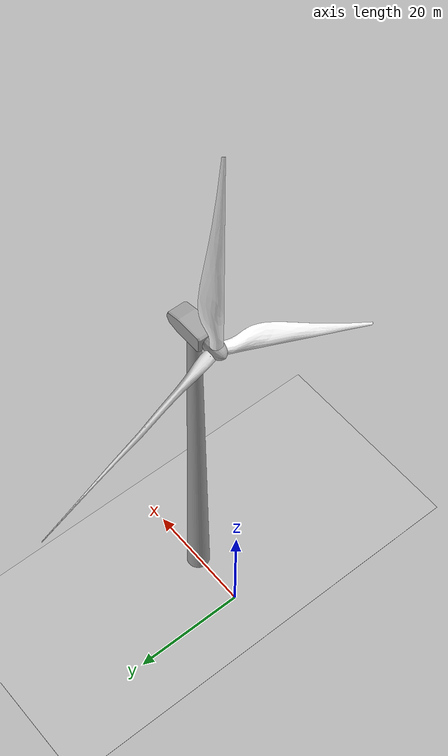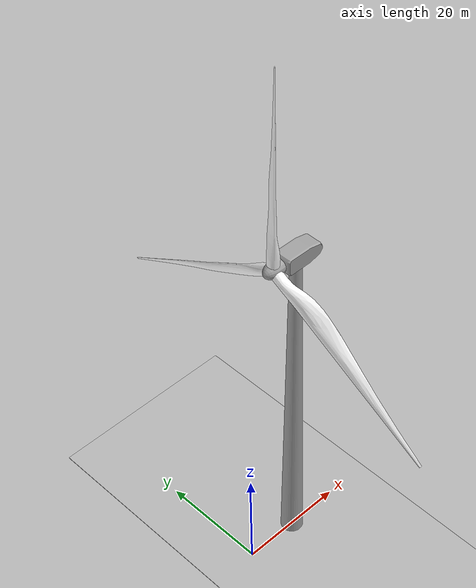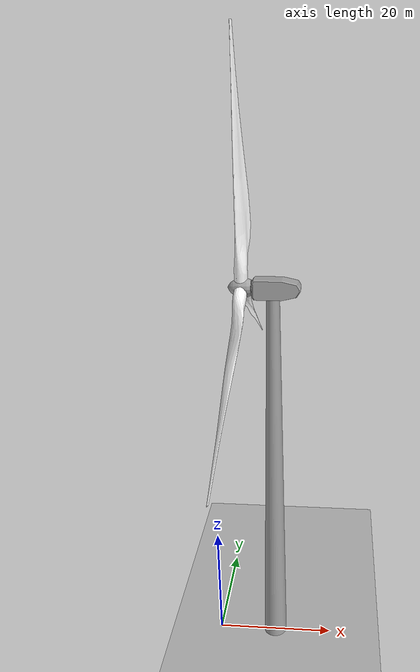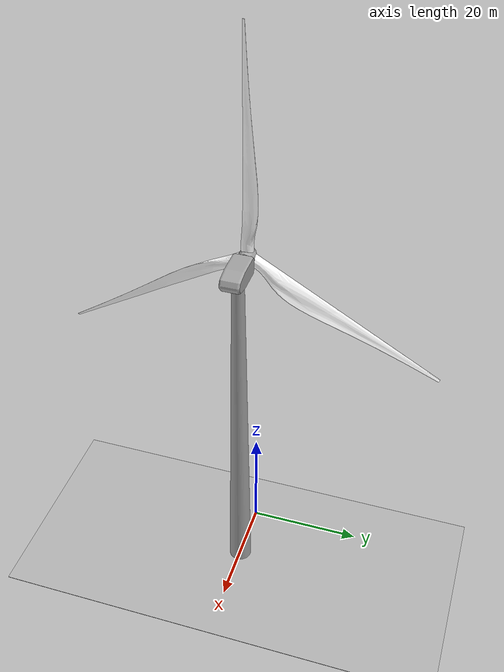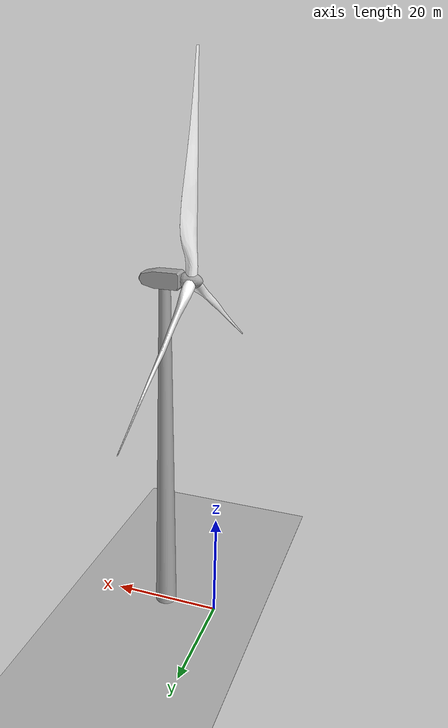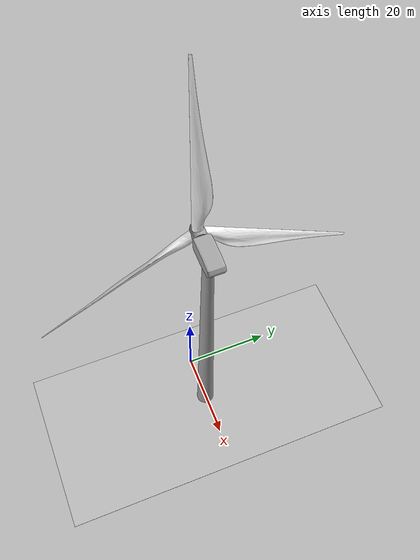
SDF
<?xml version="1.0" ?>
<sdf version="1.4">
  <world name="default">
    <include>
      <uri>model://ground_plane1</uri>
    </include>

    <include>
      <uri>model://sun</uri>
    </include>

    <include>
      <uri>model://windturbine</uri>
      <name>windturbine</name>
      <static>true</static>
      <pose>10 0 0 0 0 0</pose>
    </include>

    <!-- Only one ROS interface plugin is required per world, as any other plugin can connect a Gazebo
         topic to a ROS topic (or vise versa). -->
    <plugin name="ros_interface_plugin" filename="librotors_gazebo_ros_interface_plugin.so"/>

    <spherical_coordinates>
      <surface_model>EARTH_WGS84</surface_model>
      <latitude_deg>0</latitude_deg>
      <longitude_deg>0</longitude_deg>
      <elevation>500.0</elevation> <!-- in meters -->
      <heading_deg>0</heading_deg> <!-- in degrees -->
    </spherical_coordinates>
    <physics type='ode'>
      <ode>
        <solver>
          <type>quick</type>
          <iters>10</iters> <!-- simulating iterations per one step -->
          <sor>1.3</sor>
        </solver>
        <constraints>
          <cfm>0</cfm>
          <erp>0.2</erp>
          <contact_max_correcting_vel>100</contact_max_correcting_vel>
          <contact_surface_layer>0.001</contact_surface_layer>
        </constraints>
      </ode>
      <max_step_size>0.0025</max_step_size>
      <real_time_factor>1</real_time_factor>
      <real_time_update_rate>400</real_time_update_rate>
      <gravity>0 0 -9.8</gravity>
    </physics>
    <scene>
      <shadows>0</shadows>
      <background>0.1 0.4 0.8 1</background>
    </scene>
    <gui>
      <camera name="user_default">
        <pose> -10 0 10 0 0.27 0</pose>
      </camera>
    </gui>
  </world>
</sdf>

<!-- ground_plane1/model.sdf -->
<sdf version="1.5">
  <model name="ground_plane1">
    <static>true</static>
    <link name="link">
      <collision name="collision">
        <geometry>
          <box>
            <size>50 50 .1</size>
          </box>
        </geometry>
        <surface>
          <friction>
            <ode>
              <mu>0</mu>
              <mu2>0</mu2>
            </ode>
          </friction>
        </surface>
      </collision>
      <visual name="visual">
        <cast_shadows>false</cast_shadows>
        <geometry>
          <box>
            <size>500 500 .1</size>
          </box>
        </geometry>
        <material>
          <script>
            <uri>model://ground_plane1/materials/scripts</uri>
            <uri>model://ground_plane1/materials/textures</uri>
            <name>vrc/ground_plane1</name>
          </script>
        </material>
      </visual>
    </link>
  </model>
</sdf>

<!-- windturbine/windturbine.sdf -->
<sdf version='1.5'>
  <model name='windturbine'>
    <pose>0 0 0 0 0 0</pose>
    <link name='pole_link'>
      <pose>0 0 0 0 0 0</pose>
      <visual name='pole_visual'>
        <geometry>
          <mesh>
            <scale>1 1 1</scale>
            <uri>model://windturbine/meshes/pole.dae</uri>
          </mesh>
        </geometry>
      </visual>
      <collision name="pole_collision">
        <geometry>
          <mesh>
            <scale>1 1 1</scale>
            <uri>model://windturbine/meshes/pole.dae</uri>
          </mesh>
        </geometry>
      </collision>
      <inertial>
        <inertia>
        <ixx>1</ixx>
        <iyy>1</iyy>
        <izz>1</izz>
        </inertia>
        <mass>100</mass>
      </inertial>
    </link>

    <link name='body_link'>
      <pose>0 0 65 0 0 0</pose>
      <visual name='body_visual'>
        <geometry>
          <mesh>
            <scale>1 1 1</scale>
            <uri>model://windturbine/meshes/body.dae</uri>
          </mesh>
        </geometry>
      </visual>
      <collision name="body_collision">
        <geometry>
          <mesh>
            <scale>1 1 1</scale>
            <uri>model://windturbine/meshes/body.dae</uri>
          </mesh>
        </geometry>
      </collision>
      <inertial>
        <inertia>
        <ixx>1</ixx>
        <iyy>1</iyy>
        <izz>1</izz>
        </inertia>
        <mass>10</mass>
      </inertial>
    </link>

    <link name='rotor_link'>
      <pose>-4.8 0 65 0 0 0</pose>
      <visual name='rotor_visual'>
        <geometry>
          <mesh>
            <scale>1 1 1</scale>
            <uri>model://windturbine/meshes/rotor.dae</uri>
          </mesh>
        </geometry>
      </visual>
      <collision name="rotor_collision">
        <geometry>
          <mesh>
            <scale>1 1 1</scale>
            <uri>model://windturbine/meshes/rotor.dae</uri>
          </mesh>
        </geometry>
      </collision>
    </link>

    <link name='blade_1_link'>
      <pose>-4.8 0 65 0 0 0</pose>
      <visual name='blade_1_visual'>
        <pose>0 0 0 0 0 1</pose>
        <geometry>
          <mesh>
            <scale>1 1 1</scale>
            <uri>model://windturbine/meshes/blade.dae</uri>
          </mesh>
        </geometry>
      </visual>
      <collision name="blade_1_collision">
        <pose>0 0 0 0 0 1</pose>
        <geometry>
          <mesh>
            <scale>1 1 1</scale>
            <uri>model://windturbine/meshes/blade.dae</uri>
          </mesh>
        </geometry>
      </collision>
    </link>

    <link name='blade_2_link'>
      <pose>-4.8 0 65 2.094395102 0 0</pose>
      <visual name='blade_2_visual'>
        <pose>0 0 0 0 0 1</pose>
        <geometry>
          <mesh>
            <scale>1 1 1</scale>
            <uri>model://windturbine/meshes/blade.dae</uri>
          </mesh>
        </geometry>
      </visual>
      <collision name="blade_2_collision">
        <pose>0 0 0 0 0 1</pose>
        <geometry>
          <mesh>
            <scale>1 1 1</scale>
            <uri>model://windturbine/meshes/blade.dae</uri>
          </mesh>
        </geometry>
      </collision>
    </link>

    <link name='blade_3_link'>
      <pose>-4.8 0 65 -2.094395102 0 0</pose>
      <visual name='blade_2_visual'>
        <pose>0 0 0 0 0 1</pose>
        <geometry>
          <mesh>
            <scale>1 1 1</scale>
            <uri>model://windturbine/meshes/blade.dae</uri>
          </mesh>
        </geometry>
      </visual>
      <collision name="blade_3_collision">
        <pose>0 0 0 0 0 1</pose>
        <geometry>
          <mesh>
            <scale>1 1 1</scale>
            <uri>model://windturbine/meshes/blade.dae</uri>
          </mesh>
        </geometry>
      </collision>
    </link>

  </model>
</sdf>
